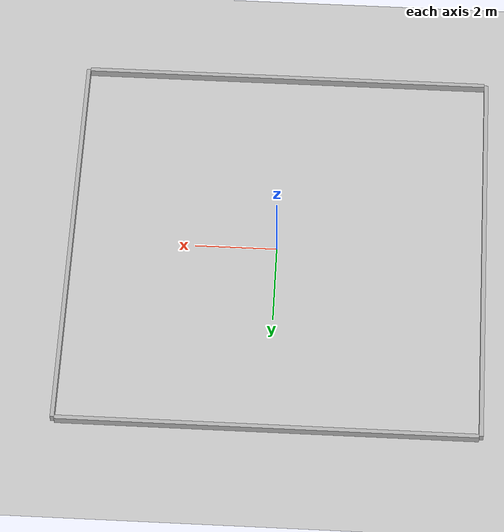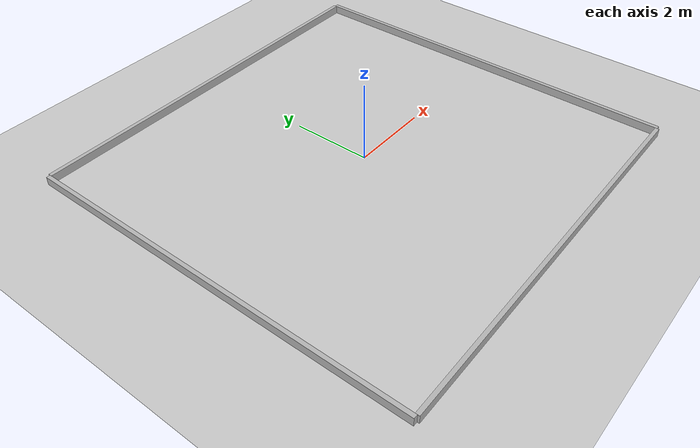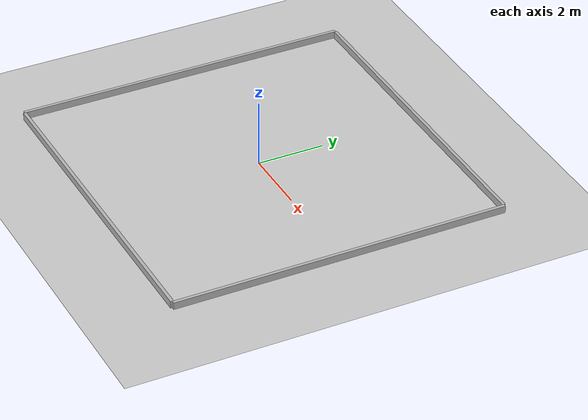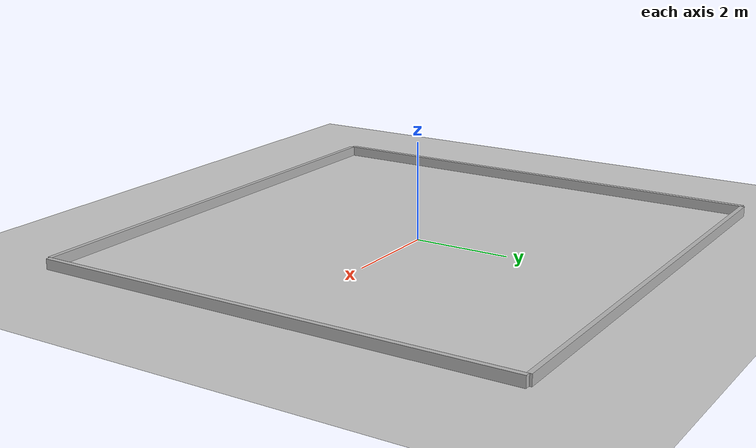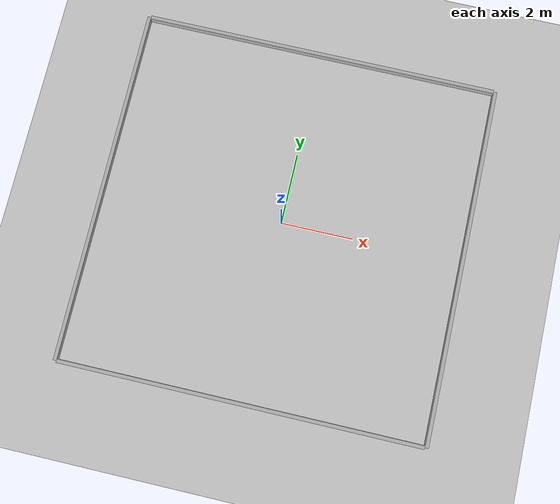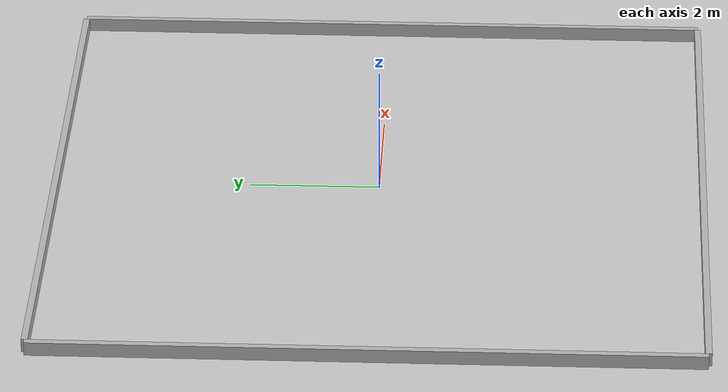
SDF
<sdf version="1.6">
 <world name="default">
  <include><uri>model://sun</uri></include>
  <include><uri>model://ground_plane</uri></include>
  <model name="wall1">
   <pose>0 5 0 0 0 0</pose>
   <static>true</static>
   <link name="link">
    <collision name="collision"><geometry><box><size>10 0.1 0.4</size></box></geometry></collision>
    <visual name="visual"><geometry><box><size>10 0.1 0.4</size></box></geometry></visual>
   </link>
  </model>
  <model name="wall2">
   <pose>0 -5 0 0 0 0</pose>
   <static>true</static>
   <link name="link">
    <collision name="collision"><geometry><box><size>10 0.1 0.4</size></box></geometry></collision>
    <visual name="visual"><geometry><box><size>10 0.1 0.4</size></box></geometry></visual>
   </link>
  </model>
  <model name="wall3">
   <pose>-5.05 0 0 0 0 0</pose>
   <static>true</static>
   <link name="link">
    <collision name="collision"><geometry><box><size>0.1 10 0.4</size></box></geometry></collision>
    <visual name="visual"><geometry><box><size>0.1 10 0.4</size></box></geometry></visual>
   </link>
  </model>
  <model name="wall4">
   <pose>5.05 0 0 0 0 0</pose>
   <static>true</static>
   <link name="link">
    <collision name="collision"><geometry><box><size>0.1 10 0.4</size></box></geometry></collision>
    <visual name="visual"><geometry><box><size>0.1 10 0.4</size></box></geometry></visual>
   </link>
  </model>
 </world>
</sdf>
